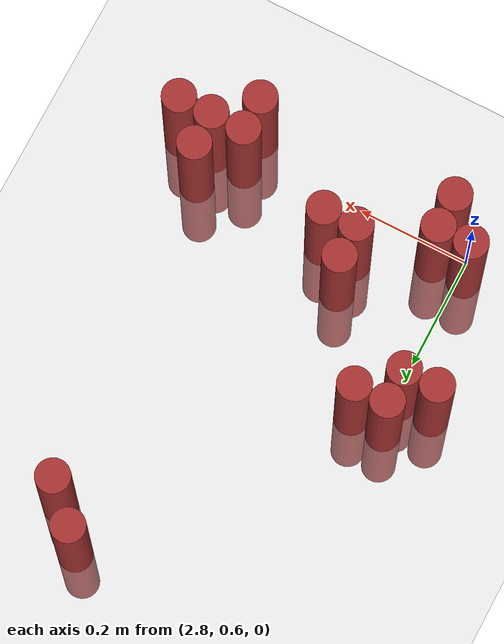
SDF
<sdf version="1.6">
 <world name="default">
  <model name="ground_plane">
   <static>1</static>
   <link name="link">
    <collision name="collision">
     <geometry><plane><normal>0 0 1</normal><size>100 100</size></plane></geometry>
     <surface><friction><ode><mu>100</mu><mu2>50</mu2></ode></friction></surface>
    </collision>
    <visual name="visual">
     <cast_shadows>0</cast_shadows>
     <geometry><plane><normal>0 0 1</normal><size>100 100</size></plane></geometry>
     <material>
      <script><uri>file://media/materials/scripts/gazebo.material</uri><name>Gazebo/Grey</name></script>
     </material>
    </visual>
   </link>
  </model>
  <model name="unit_cylinder_149">
   <static>1</static>
   <pose>3.150000 1.350000 0.000000 0.000000 0.000000 0.000000</pose>
   <link name="link">
    <inertial>
     <mass>1</mass>
     <inertia><ixx>0.145833</ixx><ixy>0</ixy><ixz>0</ixz><iyy>0.145833</iyy><iyz>0</iyz><izz>0.125</izz></inertia>
    </inertial>
    <collision name="collision">
     <geometry><cylinder><radius>0.030000</radius><length>0.5</length></cylinder></geometry>
    </collision>
    <visual name="visual">
     <geometry><cylinder><radius>0.030000</radius><length>0.5</length></cylinder></geometry>
     <material>
      <ambient>0.648000 0.192000 0.192000 1</ambient>
      <diffuse>0.648000 0.192000 0.192000 1</diffuse>
     </material>
     <material>
      <script><name>Gazebo/Grey</name><uri>file://media/materials/scripts/gazebo.material</uri></script>
     </material>
    </visual>
   </link>
  </model>
  <model name="unit_cylinder_153">
   <static>1</static>
   <pose>3.210000 1.290000 0.000000 0.000000 0.000000 0.000000</pose>
   <link name="link">
    <inertial>
     <mass>1</mass>
     <inertia><ixx>0.145833</ixx><ixy>0</ixy><ixz>0</ixz><iyy>0.145833</iyy><iyz>0</iyz><izz>0.125</izz></inertia>
    </inertial>
    <collision name="collision">
     <geometry><cylinder><radius>0.030000</radius><length>0.5</length></cylinder></geometry>
    </collision>
    <visual name="visual">
     <geometry><cylinder><radius>0.030000</radius><length>0.5</length></cylinder></geometry>
     <material>
      <ambient>0.648000 0.192000 0.192000 1</ambient>
      <diffuse>0.648000 0.192000 0.192000 1</diffuse>
     </material>
     <material>
      <script><name>Gazebo/Grey</name><uri>file://media/materials/scripts/gazebo.material</uri></script>
     </material>
    </visual>
   </link>
  </model>
  <model name="unit_cylinder_163">
   <static>1</static>
   <pose>2.790000 0.930000 0.000000 0.000000 0.000000 0.000000</pose>
   <link name="link">
    <inertial>
     <mass>1</mass>
     <inertia><ixx>0.145833</ixx><ixy>0</ixy><ixz>0</ixz><iyy>0.145833</iyy><iyz>0</iyz><izz>0.125</izz></inertia>
    </inertial>
    <collision name="collision">
     <geometry><cylinder><radius>0.030000</radius><length>0.5</length></cylinder></geometry>
    </collision>
    <visual name="visual">
     <geometry><cylinder><radius>0.030000</radius><length>0.5</length></cylinder></geometry>
     <material>
      <ambient>0.648000 0.192000 0.192000 1</ambient>
      <diffuse>0.648000 0.192000 0.192000 1</diffuse>
     </material>
     <material>
      <script><name>Gazebo/Grey</name><uri>file://media/materials/scripts/gazebo.material</uri></script>
     </material>
    </visual>
   </link>
  </model>
  <model name="unit_cylinder_164">
   <static>1</static>
   <pose>2.850000 0.930000 0.000000 0.000000 0.000000 0.000000</pose>
   <link name="link">
    <inertial>
     <mass>1</mass>
     <inertia><ixx>0.145833</ixx><ixy>0</ixy><ixz>0</ixz><iyy>0.145833</iyy><iyz>0</iyz><izz>0.125</izz></inertia>
    </inertial>
    <collision name="collision">
     <geometry><cylinder><radius>0.030000</radius><length>0.5</length></cylinder></geometry>
    </collision>
    <visual name="visual">
     <geometry><cylinder><radius>0.030000</radius><length>0.5</length></cylinder></geometry>
     <material>
      <ambient>0.648000 0.192000 0.192000 1</ambient>
      <diffuse>0.648000 0.192000 0.192000 1</diffuse>
     </material>
     <material>
      <script><name>Gazebo/Grey</name><uri>file://media/materials/scripts/gazebo.material</uri></script>
     </material>
    </visual>
   </link>
  </model>
  <model name="unit_cylinder_165">
   <static>1</static>
   <pose>2.730000 0.870000 0.000000 0.000000 0.000000 0.000000</pose>
   <link name="link">
    <inertial>
     <mass>1</mass>
     <inertia><ixx>0.145833</ixx><ixy>0</ixy><ixz>0</ixz><iyy>0.145833</iyy><iyz>0</iyz><izz>0.125</izz></inertia>
    </inertial>
    <collision name="collision">
     <geometry><cylinder><radius>0.030000</radius><length>0.5</length></cylinder></geometry>
    </collision>
    <visual name="visual">
     <geometry><cylinder><radius>0.030000</radius><length>0.5</length></cylinder></geometry>
     <material>
      <ambient>0.648000 0.192000 0.192000 1</ambient>
      <diffuse>0.648000 0.192000 0.192000 1</diffuse>
     </material>
     <material>
      <script><name>Gazebo/Grey</name><uri>file://media/materials/scripts/gazebo.material</uri></script>
     </material>
    </visual>
   </link>
  </model>
  <model name="unit_cylinder_166">
   <static>1</static>
   <pose>2.790000 0.870000 0.000000 0.000000 0.000000 0.000000</pose>
   <link name="link">
    <inertial>
     <mass>1</mass>
     <inertia><ixx>0.145833</ixx><ixy>0</ixy><ixz>0</ixz><iyy>0.145833</iyy><iyz>0</iyz><izz>0.125</izz></inertia>
    </inertial>
    <collision name="collision">
     <geometry><cylinder><radius>0.030000</radius><length>0.5</length></cylinder></geometry>
    </collision>
    <visual name="visual">
     <geometry><cylinder><radius>0.030000</radius><length>0.5</length></cylinder></geometry>
     <material>
      <ambient>0.648000 0.192000 0.192000 1</ambient>
      <diffuse>0.648000 0.192000 0.192000 1</diffuse>
     </material>
     <material>
      <script><name>Gazebo/Grey</name><uri>file://media/materials/scripts/gazebo.material</uri></script>
     </material>
    </visual>
   </link>
  </model>
  <model name="unit_cylinder_170">
   <static>1</static>
   <pose>2.970000 0.750000 0.000000 0.000000 0.000000 0.000000</pose>
   <link name="link">
    <inertial>
     <mass>1</mass>
     <inertia><ixx>0.145833</ixx><ixy>0</ixy><ixz>0</ixz><iyy>0.145833</iyy><iyz>0</iyz><izz>0.125</izz></inertia>
    </inertial>
    <collision name="collision">
     <geometry><cylinder><radius>0.030000</radius><length>0.5</length></cylinder></geometry>
    </collision>
    <visual name="visual">
     <geometry><cylinder><radius>0.030000</radius><length>0.5</length></cylinder></geometry>
     <material>
      <ambient>0.648000 0.192000 0.192000 1</ambient>
      <diffuse>0.648000 0.192000 0.192000 1</diffuse>
     </material>
     <material>
      <script><name>Gazebo/Grey</name><uri>file://media/materials/scripts/gazebo.material</uri></script>
     </material>
    </visual>
   </link>
  </model>
  <model name="unit_cylinder_172">
   <static>1</static>
   <pose>2.970000 0.690000 0.000000 0.000000 0.000000 0.000000</pose>
   <link name="link">
    <inertial>
     <mass>1</mass>
     <inertia><ixx>0.145833</ixx><ixy>0</ixy><ixz>0</ixz><iyy>0.145833</iyy><iyz>0</iyz><izz>0.125</izz></inertia>
    </inertial>
    <collision name="collision">
     <geometry><cylinder><radius>0.030000</radius><length>0.5</length></cylinder></geometry>
    </collision>
    <visual name="visual">
     <geometry><cylinder><radius>0.030000</radius><length>0.5</length></cylinder></geometry>
     <material>
      <ambient>0.648000 0.192000 0.192000 1</ambient>
      <diffuse>0.648000 0.192000 0.192000 1</diffuse>
     </material>
     <material>
      <script><name>Gazebo/Grey</name><uri>file://media/materials/scripts/gazebo.material</uri></script>
     </material>
    </visual>
   </link>
  </model>
  <model name="unit_cylinder_173">
   <static>1</static>
   <pose>3.030000 0.690000 0.000000 0.000000 0.000000 0.000000</pose>
   <link name="link">
    <inertial>
     <mass>1</mass>
     <inertia><ixx>0.145833</ixx><ixy>0</ixy><ixz>0</ixz><iyy>0.145833</iyy><iyz>0</iyz><izz>0.125</izz></inertia>
    </inertial>
    <collision name="collision">
     <geometry><cylinder><radius>0.030000</radius><length>0.5</length></cylinder></geometry>
    </collision>
    <visual name="visual">
     <geometry><cylinder><radius>0.030000</radius><length>0.5</length></cylinder></geometry>
     <material>
      <ambient>0.648000 0.192000 0.192000 1</ambient>
      <diffuse>0.648000 0.192000 0.192000 1</diffuse>
     </material>
     <material>
      <script><name>Gazebo/Grey</name><uri>file://media/materials/scripts/gazebo.material</uri></script>
     </material>
    </visual>
   </link>
  </model>
  <model name="unit_cylinder_174">
   <static>1</static>
   <pose>3.270000 0.690000 0.000000 0.000000 0.000000 0.000000</pose>
   <link name="link">
    <inertial>
     <mass>1</mass>
     <inertia><ixx>0.145833</ixx><ixy>0</ixy><ixz>0</ixz><iyy>0.145833</iyy><iyz>0</iyz><izz>0.125</izz></inertia>
    </inertial>
    <collision name="collision">
     <geometry><cylinder><radius>0.030000</radius><length>0.5</length></cylinder></geometry>
    </collision>
    <visual name="visual">
     <geometry><cylinder><radius>0.030000</radius><length>0.5</length></cylinder></geometry>
     <material>
      <ambient>0.648000 0.192000 0.192000 1</ambient>
      <diffuse>0.648000 0.192000 0.192000 1</diffuse>
     </material>
     <material>
      <script><name>Gazebo/Grey</name><uri>file://media/materials/scripts/gazebo.material</uri></script>
     </material>
    </visual>
   </link>
  </model>
  <model name="unit_cylinder_178">
   <static>1</static>
   <pose>2.790000 0.630000 0.000000 0.000000 0.000000 0.000000</pose>
   <link name="link">
    <inertial>
     <mass>1</mass>
     <inertia><ixx>0.145833</ixx><ixy>0</ixy><ixz>0</ixz><iyy>0.145833</iyy><iyz>0</iyz><izz>0.125</izz></inertia>
    </inertial>
    <collision name="collision">
     <geometry><cylinder><radius>0.030000</radius><length>0.5</length></cylinder></geometry>
    </collision>
    <visual name="visual">
     <geometry><cylinder><radius>0.030000</radius><length>0.5</length></cylinder></geometry>
     <material>
      <ambient>0.648000 0.192000 0.192000 1</ambient>
      <diffuse>0.648000 0.192000 0.192000 1</diffuse>
     </material>
     <material>
      <script><name>Gazebo/Grey</name><uri>file://media/materials/scripts/gazebo.material</uri></script>
     </material>
    </visual>
   </link>
  </model>
  <model name="unit_cylinder_179">
   <static>1</static>
   <pose>2.850000 0.630000 0.000000 0.000000 0.000000 0.000000</pose>
   <link name="link">
    <inertial>
     <mass>1</mass>
     <inertia><ixx>0.145833</ixx><ixy>0</ixy><ixz>0</ixz><iyy>0.145833</iyy><iyz>0</iyz><izz>0.125</izz></inertia>
    </inertial>
    <collision name="collision">
     <geometry><cylinder><radius>0.030000</radius><length>0.5</length></cylinder></geometry>
    </collision>
    <visual name="visual">
     <geometry><cylinder><radius>0.030000</radius><length>0.5</length></cylinder></geometry>
     <material>
      <ambient>0.648000 0.192000 0.192000 1</ambient>
      <diffuse>0.648000 0.192000 0.192000 1</diffuse>
     </material>
     <material>
      <script><name>Gazebo/Grey</name><uri>file://media/materials/scripts/gazebo.material</uri></script>
     </material>
    </visual>
   </link>
  </model>
  <model name="unit_cylinder_180">
   <static>1</static>
   <pose>3.210000 0.630000 0.000000 0.000000 0.000000 0.000000</pose>
   <link name="link">
    <inertial>
     <mass>1</mass>
     <inertia><ixx>0.145833</ixx><ixy>0</ixy><ixz>0</ixz><iyy>0.145833</iyy><iyz>0</iyz><izz>0.125</izz></inertia>
    </inertial>
    <collision name="collision">
     <geometry><cylinder><radius>0.030000</radius><length>0.5</length></cylinder></geometry>
    </collision>
    <visual name="visual">
     <geometry><cylinder><radius>0.030000</radius><length>0.5</length></cylinder></geometry>
     <material>
      <ambient>0.648000 0.192000 0.192000 1</ambient>
      <diffuse>0.648000 0.192000 0.192000 1</diffuse>
     </material>
     <material>
      <script><name>Gazebo/Grey</name><uri>file://media/materials/scripts/gazebo.material</uri></script>
     </material>
    </visual>
   </link>
  </model>
  <model name="unit_cylinder_181">
   <static>1</static>
   <pose>3.270000 0.630000 0.000000 0.000000 0.000000 0.000000</pose>
   <link name="link">
    <inertial>
     <mass>1</mass>
     <inertia><ixx>0.145833</ixx><ixy>0</ixy><ixz>0</ixz><iyy>0.145833</iyy><iyz>0</iyz><izz>0.125</izz></inertia>
    </inertial>
    <collision name="collision">
     <geometry><cylinder><radius>0.030000</radius><length>0.5</length></cylinder></geometry>
    </collision>
    <visual name="visual">
     <geometry><cylinder><radius>0.030000</radius><length>0.5</length></cylinder></geometry>
     <material>
      <ambient>0.648000 0.192000 0.192000 1</ambient>
      <diffuse>0.648000 0.192000 0.192000 1</diffuse>
     </material>
     <material>
      <script><name>Gazebo/Grey</name><uri>file://media/materials/scripts/gazebo.material</uri></script>
     </material>
    </visual>
   </link>
  </model>
  <model name="unit_cylinder_182">
   <static>1</static>
   <pose>3.330000 0.630000 0.000000 0.000000 0.000000 0.000000</pose>
   <link name="link">
    <inertial>
     <mass>1</mass>
     <inertia><ixx>0.145833</ixx><ixy>0</ixy><ixz>0</ixz><iyy>0.145833</iyy><iyz>0</iyz><izz>0.125</izz></inertia>
    </inertial>
    <collision name="collision">
     <geometry><cylinder><radius>0.030000</radius><length>0.5</length></cylinder></geometry>
    </collision>
    <visual name="visual">
     <geometry><cylinder><radius>0.030000</radius><length>0.5</length></cylinder></geometry>
     <material>
      <ambient>0.648000 0.192000 0.192000 1</ambient>
      <diffuse>0.648000 0.192000 0.192000 1</diffuse>
     </material>
     <material>
      <script><name>Gazebo/Grey</name><uri>file://media/materials/scripts/gazebo.material</uri></script>
     </material>
    </visual>
   </link>
  </model>
  <model name="unit_cylinder_184">
   <static>1</static>
   <pose>2.850000 0.570000 0.000000 0.000000 0.000000 0.000000</pose>
   <link name="link">
    <inertial>
     <mass>1</mass>
     <inertia><ixx>0.145833</ixx><ixy>0</ixy><ixz>0</ixz><iyy>0.145833</iyy><iyz>0</iyz><izz>0.125</izz></inertia>
    </inertial>
    <collision name="collision">
     <geometry><cylinder><radius>0.030000</radius><length>0.5</length></cylinder></geometry>
    </collision>
    <visual name="visual">
     <geometry><cylinder><radius>0.030000</radius><length>0.5</length></cylinder></geometry>
     <material>
      <ambient>0.648000 0.192000 0.192000 1</ambient>
      <diffuse>0.648000 0.192000 0.192000 1</diffuse>
     </material>
     <material>
      <script><name>Gazebo/Grey</name><uri>file://media/materials/scripts/gazebo.material</uri></script>
     </material>
    </visual>
   </link>
  </model>
  <model name="unit_cylinder_185">
   <static>1</static>
   <pose>3.210000 0.570000 0.000000 0.000000 0.000000 0.000000</pose>
   <link name="link">
    <inertial>
     <mass>1</mass>
     <inertia><ixx>0.145833</ixx><ixy>0</ixy><ixz>0</ixz><iyy>0.145833</iyy><iyz>0</iyz><izz>0.125</izz></inertia>
    </inertial>
    <collision name="collision">
     <geometry><cylinder><radius>0.030000</radius><length>0.5</length></cylinder></geometry>
    </collision>
    <visual name="visual">
     <geometry><cylinder><radius>0.030000</radius><length>0.5</length></cylinder></geometry>
     <material>
      <ambient>0.648000 0.192000 0.192000 1</ambient>
      <diffuse>0.648000 0.192000 0.192000 1</diffuse>
     </material>
     <material>
      <script><name>Gazebo/Grey</name><uri>file://media/materials/scripts/gazebo.material</uri></script>
     </material>
    </visual>
   </link>
  </model>
 </world>
</sdf>
